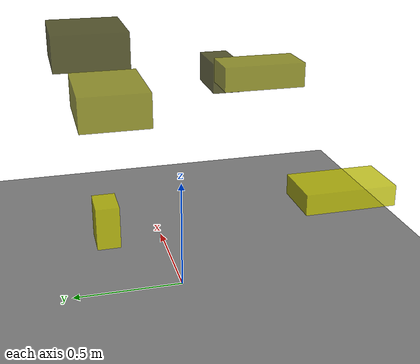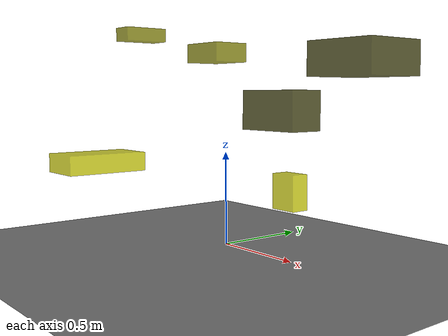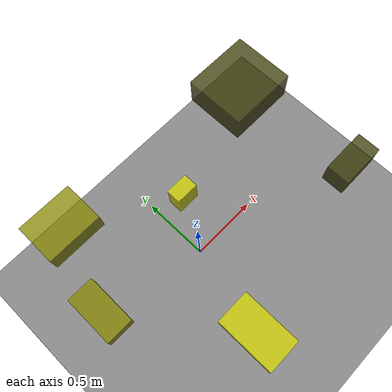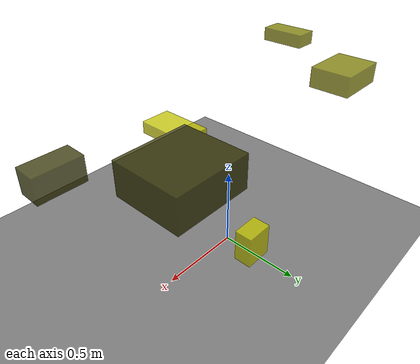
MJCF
<?xml version="1.0"?>
<mujoco model="obstacle_scene">
  <compiler angle="radian" coordinate="local"/>
  <option timestep="0.001" gravity="0 0 -9.81"/>

  <asset>
    <material name="obstacle_mat" rgba="0.8 0.8 0.0 0.8"/>
    <material name="ground_mat" rgba="0.5 0.5 0.5 1"/>
  </asset>

  <worldbody>
    <!-- Ground plane -->
    <geom name="ground" type="plane" size="3 3 0.1" material="ground_mat"/>

    <!-- Obstacles -->
    <body name="obstacle_0" pos="0.871417 -0.418971 0.751968">
      <geom name="obs_0" type="box" size="0.143609 0.074185 0.079426" rgba="0.2 0.2 0.0 0.8"/>
    </body>
    <body name="obstacle_1" pos="-0.547864 0.361029 1.073233">
      <geom name="obs_1" type="box" size="0.152639 0.116918 0.058874" rgba="0.5 0.5 0.0 0.8"/>
    </body>
    <body name="obstacle_2" pos="0.166984 0.316273 0.276924">
      <geom name="obs_2" type="box" size="0.081684 0.053264 0.099026" rgba="0.8 0.8 0.0 0.8"/>
    </body>
    <body name="obstacle_3" pos="0.676835 0.310540 0.989305">
      <geom name="obs_3" type="box" size="0.200501 0.181956 0.087946" rgba="0.2 0.2 0.0 0.8"/>
    </body>
    <body name="obstacle_4" pos="-0.684088 -0.109307 1.169805">
      <geom name="obs_4" type="box" size="0.067610 0.131689 0.039393" rgba="0.5 0.5 0.0 0.8"/>
    </body>
    <body name="obstacle_5" pos="-0.188053 -0.667286 0.478032">
      <geom name="obs_5" type="box" size="0.117412 0.202173 0.045745" rgba="0.8 0.8 0.0 0.8"/>
    </body>
  </worldbody>
</mujoco>
